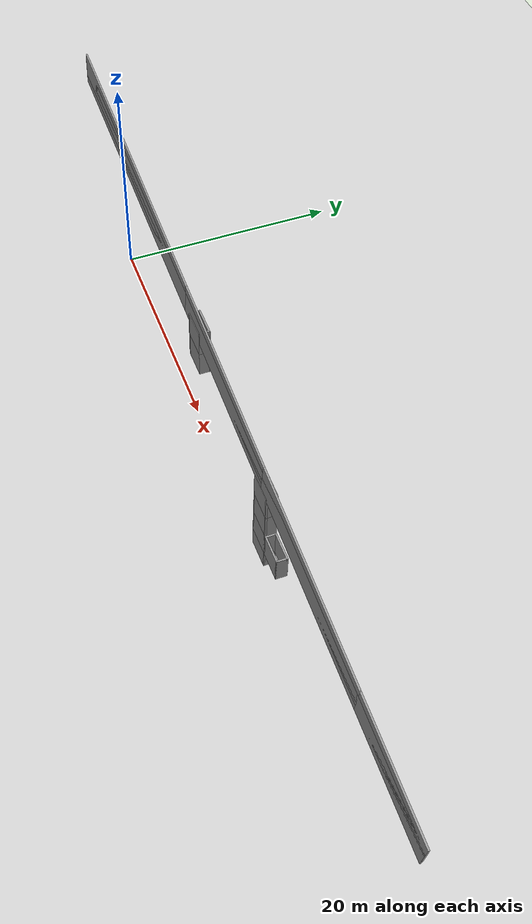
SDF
<sdf version="1.6">
 <world name="default">
  <model name="ground_plane">
   <static>1</static>
   <link name="link">
    <collision name="collision">
     <geometry><plane><normal>0 0 1</normal><size>100 100</size></plane></geometry>
     <surface><friction><ode><mu>100</mu><mu2>50</mu2></ode></friction></surface>
    </collision>
    <visual name="visual">
     <cast_shadows>0</cast_shadows>
     <geometry><plane><normal>0 0 1</normal><size>100 100</size></plane></geometry>
     <material>
      <script><uri>file://media/materials/scripts/gazebo.material</uri><name>Gazebo/Grey</name></script>
     </material>
    </visual>
   </link>
  </model>
  <model name="girder8th">
   <pose>26.53 -0.080607 9.9346 0 0.096041 0</pose>
   <link name="Wall_15">
    <collision name="Wall_15_Collision">
     <geometry><box><size>18 0.15 2.5</size></box></geometry>
     <pose>0 0 1.25 0 -0 0</pose>
    </collision>
    <visual name="Wall_15_Visual">
     <pose>0 0 1.25 0 -0 0</pose>
     <geometry><box><size>18 0.15 2.5</size></box></geometry>
     <material>
      <script><uri>file://media/materials/scripts/gazebo.material</uri><name>Gazebo/Grey</name></script>
      <ambient>1 1 1 1</ambient>
     </material>
    </visual>
    <pose>-17.85 0 0 0 -0 0</pose>
   </link>
   <link name="Wall_17">
    <collision name="Wall_17_Collision">
     <geometry><box><size>18 0.15 2.5</size></box></geometry>
     <pose>0 0 1.25 0 -0 0</pose>
    </collision>
    <visual name="Wall_17_Visual">
     <pose>0 0 1.25 0 -0 0</pose>
     <geometry><box><size>18 0.15 2.5</size></box></geometry>
     <material>
      <script><uri>file://media/materials/scripts/gazebo.material</uri><name>Gazebo/Grey</name></script>
      <ambient>1 1 1 1</ambient>
     </material>
    </visual>
   </link>
   <link name="Wall_19">
    <collision name="Wall_19_Collision">
     <geometry><box><size>18 0.15 2.5</size></box></geometry>
     <pose>0 0 1.25 0 -0 0</pose>
    </collision>
    <visual name="Wall_19_Visual">
     <pose>0 0 1.25 0 -0 0</pose>
     <geometry><box><size>18 0.15 2.5</size></box></geometry>
     <material>
      <script><uri>file://media/materials/scripts/gazebo.material</uri><name>Gazebo/Grey</name></script>
      <ambient>1 1 1 1</ambient>
     </material>
    </visual>
    <pose>17.85 0 0 0 -0 0</pose>
   </link>
   <link name="Wall_21">
    <collision name="Wall_21_Collision">
     <geometry><box><size>10.8 0.15 2.5</size></box></geometry>
     <pose>0 0 1.25 0 -0 0</pose>
    </collision>
    <visual name="Wall_21_Visual">
     <pose>0 0 1.25 0 -0 0</pose>
     <geometry><box><size>10.8 0.15 2.5</size></box></geometry>
     <material>
      <script><uri>file://media/materials/scripts/gazebo.material</uri><name>Gazebo/Grey</name></script>
      <ambient>1 1 1 1</ambient>
     </material>
    </visual>
    <pose>32.1 0 0 0 -0 0</pose>
   </link>
   <link name="Wall_9">
    <collision name="Wall_9_Collision">
     <geometry><box><size>10.8 0.15 2.5</size></box></geometry>
     <pose>0 0 1.25 0 -0 0</pose>
    </collision>
    <visual name="Wall_9_Visual">
     <pose>0 0 1.25 0 -0 0</pose>
     <geometry><box><size>10.8 0.15 2.5</size></box></geometry>
     <material>
      <script><uri>file://media/materials/scripts/gazebo.material</uri><name>Gazebo/Grey</name></script>
      <ambient>1 1 1 1</ambient>
     </material>
    </visual>
    <pose>-32.1 0 0 0 -0 0</pose>
   </link>
   <static>1</static>
  </model>
  <model name="column25_clone_3_clone_0">
   <pose>35.3237 0.315716 6.81299 0 -0 0</pose>
   <link name="Wall_0">
    <collision name="Wall_0_Collision">
     <geometry><box><size>2.5 0.15 2.5</size></box></geometry>
     <pose>0 0 1.25 0 -0 0</pose>
    </collision>
    <visual name="Wall_0_Visual">
     <pose>0 0 1.25 0 -0 0</pose>
     <geometry><box><size>2.5 0.15 2.5</size></box></geometry>
     <material>
      <script><uri>file://media/materials/scripts/gazebo.material</uri><name>Gazebo/Grey</name></script>
      <ambient>1 1 1 1</ambient>
     </material>
    </visual>
    <pose>0 -0.425 0 0 -0 0</pose>
   </link>
   <link name="Wall_1">
    <collision name="Wall_1_Collision">
     <geometry><box><size>1 0.15 2.5</size></box></geometry>
     <pose>0 0 1.25 0 -0 0</pose>
    </collision>
    <visual name="Wall_1_Visual">
     <pose>0 0 1.25 0 -0 0</pose>
     <geometry><box><size>1 0.15 2.5</size></box></geometry>
     <material>
      <script><uri>file://media/materials/scripts/gazebo.material</uri><name>Gazebo/Grey</name></script>
      <ambient>1 1 1 1</ambient>
     </material>
    </visual>
    <pose>1.175 0 0 0 -0 1.5708</pose>
   </link>
   <link name="Wall_2">
    <collision name="Wall_2_Collision">
     <geometry><box><size>2.5 0.15 2.5</size></box></geometry>
     <pose>0 0 1.25 0 -0 0</pose>
    </collision>
    <visual name="Wall_2_Visual">
     <pose>0 0 1.25 0 -0 0</pose>
     <geometry><box><size>2.5 0.15 2.5</size></box></geometry>
     <material>
      <script><uri>file://media/materials/scripts/gazebo.material</uri><name>Gazebo/Grey</name></script>
      <ambient>1 1 1 1</ambient>
     </material>
    </visual>
    <pose>0 0.425 0 0 -0 3.14159</pose>
   </link>
   <link name="Wall_3">
    <collision name="Wall_3_Collision">
     <geometry><box><size>1 0.15 2.5</size></box></geometry>
     <pose>0 0 1.25 0 -0 0</pose>
    </collision>
    <visual name="Wall_3_Visual">
     <pose>0 0 1.25 0 -0 0</pose>
     <geometry><box><size>1 0.15 2.5</size></box></geometry>
     <material>
      <script><uri>file://media/materials/scripts/gazebo.material</uri><name>Gazebo/Grey</name></script>
      <ambient>1 1 1 1</ambient>
     </material>
    </visual>
    <pose>-1.175 0 0 0 0 -1.5708</pose>
   </link>
   <static>1</static>
  </model>
  <model name="column25_clone_3_clone_0_clone">
   <pose>35.3237 0.315716 4.31299 0 -0 0</pose>
   <link name="Wall_0">
    <collision name="Wall_0_Collision">
     <geometry><box><size>2.5 0.15 2.5</size></box></geometry>
     <pose>0 0 1.25 0 -0 0</pose>
    </collision>
    <visual name="Wall_0_Visual">
     <pose>0 0 1.25 0 -0 0</pose>
     <geometry><box><size>2.5 0.15 2.5</size></box></geometry>
     <material>
      <script><uri>file://media/materials/scripts/gazebo.material</uri><name>Gazebo/Grey</name></script>
      <ambient>1 1 1 1</ambient>
     </material>
    </visual>
    <pose>0 -0.425 0 0 -0 0</pose>
   </link>
   <link name="Wall_1">
    <collision name="Wall_1_Collision">
     <geometry><box><size>1 0.15 2.5</size></box></geometry>
     <pose>0 0 1.25 0 -0 0</pose>
    </collision>
    <visual name="Wall_1_Visual">
     <pose>0 0 1.25 0 -0 0</pose>
     <geometry><box><size>1 0.15 2.5</size></box></geometry>
     <material>
      <script><uri>file://media/materials/scripts/gazebo.material</uri><name>Gazebo/Grey</name></script>
      <ambient>1 1 1 1</ambient>
     </material>
    </visual>
    <pose>1.175 0 0 0 -0 1.5708</pose>
   </link>
   <link name="Wall_2">
    <collision name="Wall_2_Collision">
     <geometry><box><size>2.5 0.15 2.5</size></box></geometry>
     <pose>0 0 1.25 0 -0 0</pose>
    </collision>
    <visual name="Wall_2_Visual">
     <pose>0 0 1.25 0 -0 0</pose>
     <geometry><box><size>2.5 0.15 2.5</size></box></geometry>
     <material>
      <script><uri>file://media/materials/scripts/gazebo.material</uri><name>Gazebo/Grey</name></script>
      <ambient>1 1 1 1</ambient>
     </material>
    </visual>
    <pose>0 0.425 0 0 -0 3.14159</pose>
   </link>
   <link name="Wall_3">
    <collision name="Wall_3_Collision">
     <geometry><box><size>1 0.15 2.5</size></box></geometry>
     <pose>0 0 1.25 0 -0 0</pose>
    </collision>
    <visual name="Wall_3_Visual">
     <pose>0 0 1.25 0 -0 0</pose>
     <geometry><box><size>1 0.15 2.5</size></box></geometry>
     <material>
      <script><uri>file://media/materials/scripts/gazebo.material</uri><name>Gazebo/Grey</name></script>
      <ambient>1 1 1 1</ambient>
     </material>
    </visual>
    <pose>-1.175 0 0 0 0 -1.5708</pose>
   </link>
   <static>1</static>
  </model>
  <model name="column25_clone_3_clone_0_clone_clone">
   <pose>35.3237 0.315716 1.81299 0 -0 0</pose>
   <link name="Wall_0">
    <collision name="Wall_0_Collision">
     <geometry><box><size>2.5 0.15 2.5</size></box></geometry>
     <pose>0 0 1.25 0 -0 0</pose>
    </collision>
    <visual name="Wall_0_Visual">
     <pose>0 0 1.25 0 -0 0</pose>
     <geometry><box><size>2.5 0.15 2.5</size></box></geometry>
     <material>
      <script><uri>file://media/materials/scripts/gazebo.material</uri><name>Gazebo/Grey</name></script>
      <ambient>1 1 1 1</ambient>
     </material>
    </visual>
    <pose>0 -0.425 0 0 -0 0</pose>
   </link>
   <link name="Wall_1">
    <collision name="Wall_1_Collision">
     <geometry><box><size>1 0.15 2.5</size></box></geometry>
     <pose>0 0 1.25 0 -0 0</pose>
    </collision>
    <visual name="Wall_1_Visual">
     <pose>0 0 1.25 0 -0 0</pose>
     <geometry><box><size>1 0.15 2.5</size></box></geometry>
     <material>
      <script><uri>file://media/materials/scripts/gazebo.material</uri><name>Gazebo/Grey</name></script>
      <ambient>1 1 1 1</ambient>
     </material>
    </visual>
    <pose>1.175 0 0 0 -0 1.5708</pose>
   </link>
   <link name="Wall_2">
    <collision name="Wall_2_Collision">
     <geometry><box><size>2.5 0.15 2.5</size></box></geometry>
     <pose>0 0 1.25 0 -0 0</pose>
    </collision>
    <visual name="Wall_2_Visual">
     <pose>0 0 1.25 0 -0 0</pose>
     <geometry><box><size>2.5 0.15 2.5</size></box></geometry>
     <material>
      <script><uri>file://media/materials/scripts/gazebo.material</uri><name>Gazebo/Grey</name></script>
      <ambient>1 1 1 1</ambient>
     </material>
    </visual>
    <pose>0 0.425 0 0 -0 3.14159</pose>
   </link>
   <link name="Wall_3">
    <collision name="Wall_3_Collision">
     <geometry><box><size>1 0.15 2.5</size></box></geometry>
     <pose>0 0 1.25 0 -0 0</pose>
    </collision>
    <visual name="Wall_3_Visual">
     <pose>0 0 1.25 0 -0 0</pose>
     <geometry><box><size>1 0.15 2.5</size></box></geometry>
     <material>
      <script><uri>file://media/materials/scripts/gazebo.material</uri><name>Gazebo/Grey</name></script>
      <ambient>1 1 1 1</ambient>
     </material>
    </visual>
    <pose>-1.175 0 0 0 0 -1.5708</pose>
   </link>
   <static>1</static>
  </model>
  <model name="column25_clone_3_clone_0_clone_clone_clone">
   <pose>35.3237 0.315716 -0.687008 0 -0 0</pose>
   <link name="Wall_0">
    <collision name="Wall_0_Collision">
     <geometry><box><size>2.5 0.15 2.5</size></box></geometry>
     <pose>0 0 1.25 0 -0 0</pose>
    </collision>
    <visual name="Wall_0_Visual">
     <pose>0 0 1.25 0 -0 0</pose>
     <geometry><box><size>2.5 0.15 2.5</size></box></geometry>
     <material>
      <script><uri>file://media/materials/scripts/gazebo.material</uri><name>Gazebo/Grey</name></script>
      <ambient>1 1 1 1</ambient>
     </material>
    </visual>
    <pose>0 -0.425 0 0 -0 0</pose>
   </link>
   <link name="Wall_1">
    <collision name="Wall_1_Collision">
     <geometry><box><size>1 0.15 2.5</size></box></geometry>
     <pose>0 0 1.25 0 -0 0</pose>
    </collision>
    <visual name="Wall_1_Visual">
     <pose>0 0 1.25 0 -0 0</pose>
     <geometry><box><size>1 0.15 2.5</size></box></geometry>
     <material>
      <script><uri>file://media/materials/scripts/gazebo.material</uri><name>Gazebo/Grey</name></script>
      <ambient>1 1 1 1</ambient>
     </material>
    </visual>
    <pose>1.175 0 0 0 -0 1.5708</pose>
   </link>
   <link name="Wall_2">
    <collision name="Wall_2_Collision">
     <geometry><box><size>2.5 0.15 2.5</size></box></geometry>
     <pose>0 0 1.25 0 -0 0</pose>
    </collision>
    <visual name="Wall_2_Visual">
     <pose>0 0 1.25 0 -0 0</pose>
     <geometry><box><size>2.5 0.15 2.5</size></box></geometry>
     <material>
      <script><uri>file://media/materials/scripts/gazebo.material</uri><name>Gazebo/Grey</name></script>
      <ambient>1 1 1 1</ambient>
     </material>
    </visual>
    <pose>0 0.425 0 0 -0 3.14159</pose>
   </link>
   <link name="Wall_3">
    <collision name="Wall_3_Collision">
     <geometry><box><size>1 0.15 2.5</size></box></geometry>
     <pose>0 0 1.25 0 -0 0</pose>
    </collision>
    <visual name="Wall_3_Visual">
     <pose>0 0 1.25 0 -0 0</pose>
     <geometry><box><size>1 0.15 2.5</size></box></geometry>
     <material>
      <script><uri>file://media/materials/scripts/gazebo.material</uri><name>Gazebo/Grey</name></script>
      <ambient>1 1 1 1</ambient>
     </material>
    </visual>
    <pose>-1.175 0 0 0 0 -1.5708</pose>
   </link>
   <static>1</static>
  </model>
  <model name="column25_clone_3_clone_clone_0_clone_clone_clone_clone_clone">
   <pose>20.1084 0.281961 6.75147 0 -0 8e-06</pose>
   <link name="Wall_0">
    <collision name="Wall_0_Collision">
     <geometry><box><size>2.5 0.15 2.5</size></box></geometry>
     <pose>0 0 1.25 0 -0 0</pose>
    </collision>
    <visual name="Wall_0_Visual">
     <pose>0 0 1.25 0 -0 0</pose>
     <geometry><box><size>2.5 0.15 2.5</size></box></geometry>
     <material>
      <script><uri>file://media/materials/scripts/gazebo.material</uri><name>Gazebo/Grey</name></script>
      <ambient>1 1 1 1</ambient>
     </material>
    </visual>
    <pose>0 -0.425 0 0 -0 0</pose>
   </link>
   <link name="Wall_1">
    <collision name="Wall_1_Collision">
     <geometry><box><size>1 0.15 2.5</size></box></geometry>
     <pose>0 0 1.25 0 -0 0</pose>
    </collision>
    <visual name="Wall_1_Visual">
     <pose>0 0 1.25 0 -0 0</pose>
     <geometry><box><size>1 0.15 2.5</size></box></geometry>
     <material>
      <script><uri>file://media/materials/scripts/gazebo.material</uri><name>Gazebo/Grey</name></script>
      <ambient>1 1 1 1</ambient>
     </material>
    </visual>
    <pose>1.175 0 0 0 -0 1.5708</pose>
   </link>
   <link name="Wall_2">
    <collision name="Wall_2_Collision">
     <geometry><box><size>2.5 0.15 2.5</size></box></geometry>
     <pose>0 0 1.25 0 -0 0</pose>
    </collision>
    <visual name="Wall_2_Visual">
     <pose>0 0 1.25 0 -0 0</pose>
     <geometry><box><size>2.5 0.15 2.5</size></box></geometry>
     <material>
      <script><uri>file://media/materials/scripts/gazebo.material</uri><name>Gazebo/Grey</name></script>
      <ambient>1 1 1 1</ambient>
     </material>
    </visual>
    <pose>0 0.425 0 0 -0 3.14159</pose>
   </link>
   <link name="Wall_3">
    <collision name="Wall_3_Collision">
     <geometry><box><size>1 0.15 2.5</size></box></geometry>
     <pose>0 0 1.25 0 -0 0</pose>
    </collision>
    <visual name="Wall_3_Visual">
     <pose>0 0 1.25 0 -0 0</pose>
     <geometry><box><size>1 0.15 2.5</size></box></geometry>
     <material>
      <script><uri>file://media/materials/scripts/gazebo.material</uri><name>Gazebo/Grey</name></script>
      <ambient>1 1 1 1</ambient>
     </material>
    </visual>
    <pose>-1.175 0 0 0 0 -1.5708</pose>
   </link>
   <static>1</static>
  </model>
  <model name="column25_clone_3_clone_clone_0_clone_clone_clone_clone_clone_clone_0">
   <pose>20.1084 0.281961 9.25147 0 -0 8e-06</pose>
   <link name="Wall_0">
    <collision name="Wall_0_Collision">
     <geometry><box><size>2.5 0.15 2.5</size></box></geometry>
     <pose>0 0 1.25 0 -0 0</pose>
    </collision>
    <visual name="Wall_0_Visual">
     <pose>0 0 1.25 0 -0 0</pose>
     <geometry><box><size>2.5 0.15 2.5</size></box></geometry>
     <material>
      <script><uri>file://media/materials/scripts/gazebo.material</uri><name>Gazebo/Grey</name></script>
      <ambient>1 1 1 1</ambient>
     </material>
    </visual>
    <pose>0 -0.425 0 0 -0 0</pose>
   </link>
   <link name="Wall_1">
    <collision name="Wall_1_Collision">
     <geometry><box><size>1 0.15 2.5</size></box></geometry>
     <pose>0 0 1.25 0 -0 0</pose>
    </collision>
    <visual name="Wall_1_Visual">
     <pose>0 0 1.25 0 -0 0</pose>
     <geometry><box><size>1 0.15 2.5</size></box></geometry>
     <material>
      <script><uri>file://media/materials/scripts/gazebo.material</uri><name>Gazebo/Grey</name></script>
      <ambient>1 1 1 1</ambient>
     </material>
    </visual>
    <pose>1.175 0 0 0 -0 1.5708</pose>
   </link>
   <link name="Wall_2">
    <collision name="Wall_2_Collision">
     <geometry><box><size>2.5 0.15 2.5</size></box></geometry>
     <pose>0 0 1.25 0 -0 0</pose>
    </collision>
    <visual name="Wall_2_Visual">
     <pose>0 0 1.25 0 -0 0</pose>
     <geometry><box><size>2.5 0.15 2.5</size></box></geometry>
     <material>
      <script><uri>file://media/materials/scripts/gazebo.material</uri><name>Gazebo/Grey</name></script>
      <ambient>1 1 1 1</ambient>
     </material>
    </visual>
    <pose>0 0.425 0 0 -0 3.14159</pose>
   </link>
   <link name="Wall_3">
    <collision name="Wall_3_Collision">
     <geometry><box><size>1 0.15 2.5</size></box></geometry>
     <pose>0 0 1.25 0 -0 0</pose>
    </collision>
    <visual name="Wall_3_Visual">
     <pose>0 0 1.25 0 -0 0</pose>
     <geometry><box><size>1 0.15 2.5</size></box></geometry>
     <material>
      <script><uri>file://media/materials/scripts/gazebo.material</uri><name>Gazebo/Grey</name></script>
      <ambient>1 1 1 1</ambient>
     </material>
    </visual>
    <pose>-1.175 0 0 0 0 -1.5708</pose>
   </link>
   <static>1</static>
  </model>
  <model name="column25_clone_3_clone_0_clone_clone_clone_clone">
   <pose>37.8237 0.315849 1.81299 0 -0 4e-06</pose>
   <link name="Wall_0">
    <collision name="Wall_0_Collision">
     <geometry><box><size>2.5 0.15 2.5</size></box></geometry>
     <pose>0 0 1.25 0 -0 0</pose>
    </collision>
    <visual name="Wall_0_Visual">
     <pose>0 0 1.25 0 -0 0</pose>
     <geometry><box><size>2.5 0.15 2.5</size></box></geometry>
     <material>
      <script><uri>file://media/materials/scripts/gazebo.material</uri><name>Gazebo/Grey</name></script>
      <ambient>1 1 1 1</ambient>
     </material>
    </visual>
    <pose>0 -0.425 0 0 -0 0</pose>
   </link>
   <link name="Wall_1">
    <collision name="Wall_1_Collision">
     <geometry><box><size>1 0.15 2.5</size></box></geometry>
     <pose>0 0 1.25 0 -0 0</pose>
    </collision>
    <visual name="Wall_1_Visual">
     <pose>0 0 1.25 0 -0 0</pose>
     <geometry><box><size>1 0.15 2.5</size></box></geometry>
     <material>
      <script><uri>file://media/materials/scripts/gazebo.material</uri><name>Gazebo/Grey</name></script>
      <ambient>1 1 1 1</ambient>
     </material>
    </visual>
    <pose>1.175 0 0 0 -0 1.5708</pose>
   </link>
   <link name="Wall_2">
    <collision name="Wall_2_Collision">
     <geometry><box><size>2.5 0.15 2.5</size></box></geometry>
     <pose>0 0 1.25 0 -0 0</pose>
    </collision>
    <visual name="Wall_2_Visual">
     <pose>0 0 1.25 0 -0 0</pose>
     <geometry><box><size>2.5 0.15 2.5</size></box></geometry>
     <material>
      <script><uri>file://media/materials/scripts/gazebo.material</uri><name>Gazebo/Grey</name></script>
      <ambient>1 1 1 1</ambient>
     </material>
    </visual>
    <pose>0 0.425 0 0 -0 3.14159</pose>
   </link>
   <link name="Wall_3">
    <collision name="Wall_3_Collision">
     <geometry><box><size>1 0.15 2.5</size></box></geometry>
     <pose>0 0 1.25 0 -0 0</pose>
    </collision>
    <visual name="Wall_3_Visual">
     <pose>0 0 1.25 0 -0 0</pose>
     <geometry><box><size>1 0.15 2.5</size></box></geometry>
     <material>
      <script><uri>file://media/materials/scripts/gazebo.material</uri><name>Gazebo/Grey</name></script>
      <ambient>1 1 1 1</ambient>
     </material>
    </visual>
    <pose>-1.175 0 0 0 0 -1.5708</pose>
   </link>
   <static>1</static>
  </model>
  <model name="girder8th_clone">
   <pose>26.6302 -0.080607 10.7157 0 0.096041 0</pose>
   <link name="Wall_15">
    <collision name="Wall_15_Collision">
     <geometry><box><size>18 0.15 2.5</size></box></geometry>
     <pose>0 0 1.25 0 -0 0</pose>
    </collision>
    <visual name="Wall_15_Visual">
     <pose>0 0 1.25 0 -0 0</pose>
     <geometry><box><size>18 0.15 2.5</size></box></geometry>
     <material>
      <script><uri>file://media/materials/scripts/gazebo.material</uri><name>Gazebo/Grey</name></script>
      <ambient>1 1 1 1</ambient>
     </material>
    </visual>
    <pose>-17.85 0 0 0 -0 0</pose>
   </link>
   <link name="Wall_17">
    <collision name="Wall_17_Collision">
     <geometry><box><size>18 0.15 2.5</size></box></geometry>
     <pose>0 0 1.25 0 -0 0</pose>
    </collision>
    <visual name="Wall_17_Visual">
     <pose>0 0 1.25 0 -0 0</pose>
     <geometry><box><size>18 0.15 2.5</size></box></geometry>
     <material>
      <script><uri>file://media/materials/scripts/gazebo.material</uri><name>Gazebo/Grey</name></script>
      <ambient>1 1 1 1</ambient>
     </material>
    </visual>
   </link>
   <link name="Wall_19">
    <collision name="Wall_19_Collision">
     <geometry><box><size>18 0.15 2.5</size></box></geometry>
     <pose>0 0 1.25 0 -0 0</pose>
    </collision>
    <visual name="Wall_19_Visual">
     <pose>0 0 1.25 0 -0 0</pose>
     <geometry><box><size>18 0.15 2.5</size></box></geometry>
     <material>
      <script><uri>file://media/materials/scripts/gazebo.material</uri><name>Gazebo/Grey</name></script>
      <ambient>1 1 1 1</ambient>
     </material>
    </visual>
    <pose>17.85 0 0 0 -0 0</pose>
   </link>
   <link name="Wall_21">
    <collision name="Wall_21_Collision">
     <geometry><box><size>10.8 0.15 2.5</size></box></geometry>
     <pose>0 0 1.25 0 -0 0</pose>
    </collision>
    <visual name="Wall_21_Visual">
     <pose>0 0 1.25 0 -0 0</pose>
     <geometry><box><size>10.8 0.15 2.5</size></box></geometry>
     <material>
      <script><uri>file://media/materials/scripts/gazebo.material</uri><name>Gazebo/Grey</name></script>
      <ambient>1 1 1 1</ambient>
     </material>
    </visual>
    <pose>32.1 0 0 0 -0 0</pose>
   </link>
   <link name="Wall_9">
    <collision name="Wall_9_Collision">
     <geometry><box><size>10.8 0.15 2.5</size></box></geometry>
     <pose>0 0 1.25 0 -0 0</pose>
    </collision>
    <visual name="Wall_9_Visual">
     <pose>0 0 1.25 0 -0 0</pose>
     <geometry><box><size>10.8 0.15 2.5</size></box></geometry>
     <material>
      <script><uri>file://media/materials/scripts/gazebo.material</uri><name>Gazebo/Grey</name></script>
      <ambient>1 1 1 1</ambient>
     </material>
    </visual>
    <pose>-32.1 0 0 0 -0 0</pose>
   </link>
   <static>1</static>
  </model>
 </world>
</sdf>
